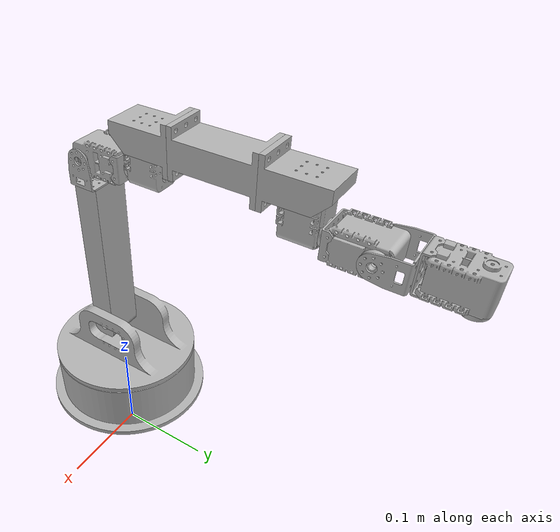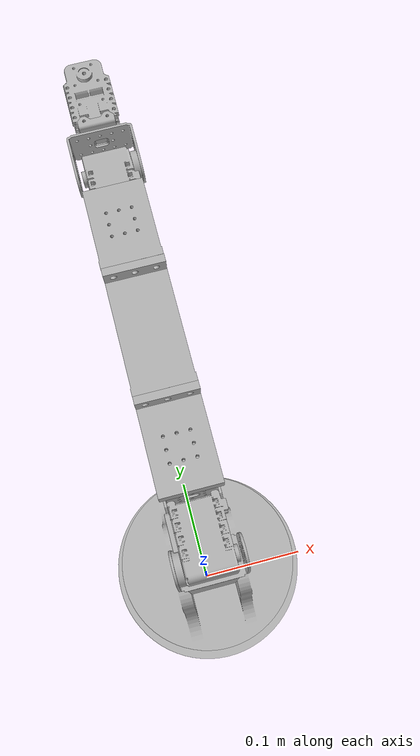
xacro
<?xml version="1.0" ?>
<robot name="mvp_arm_v2_sim" xmlns:xacro="http://www.ros.org/wiki/xacro">

<xacro:include filename="$(find mvp_arm_v2_sim_description)/urdf/materials.xacro" />
<xacro:include filename="$(find mvp_arm_v2_sim_description)/urdf/mvp_arm_v2_sim.trans" />
<xacro:include filename="$(find mvp_arm_v2_sim_description)/urdf/mvp_arm_v2_sim.gazebo" />
<link name="base_link">
  <inertial>
    <origin rpy="0 0 0" xyz="0.003139221237424357 0.007112092878934391 0.09744651147654458"/>
    <mass value="0.2255222028913783"/>
    <inertia ixx="0.000624" ixy="0.0" ixz="0.0" iyy="0.000615" iyz="1e-06" izz="0.001121"/>
  </inertial>
  <visual>
    <origin rpy="0 0 0" xyz="0 0 0"/>
    <geometry>
      <mesh filename="package://mvp_arm_v2_sim_description/meshes/base_link.stl" scale="0.001 0.001 0.001"/>
    </geometry>
    <material name="silver"/>
  </visual>
  <collision>
    <origin rpy="0 0 0" xyz="0 0 0"/>
    <geometry>
      <mesh filename="package://mvp_arm_v2_sim_description/meshes/base_link.stl" scale="0.001 0.001 0.001"/>
    </geometry>
  </collision>
</link>

<link name="Spinny_Thing_On_Servo_1">
  <inertial>
    <origin rpy="0 0 0" xyz="2.010053463885565e-05 -1.259502991068917e-06 -0.002248960573131231"/>
    <mass value="0.012286224598738087"/>
    <inertia ixx="0.0" ixy="-0.0" ixz="-0.0" iyy="0.0" iyz="0.0" izz="1e-06"/>
  </inertial>
  <visual>
    <origin rpy="0 0 0" xyz="-0.003026 -0.329964 -0.337601"/>
    <geometry>
      <mesh filename="package://mvp_arm_v2_sim_description/meshes/Spinny_Thing_On_Servo_1.stl" scale="0.001 0.001 0.001"/>
    </geometry>
    <material name="silver"/>
  </visual>
  <collision>
    <origin rpy="0 0 0" xyz="-0.003026 -0.329964 -0.337601"/>
    <geometry>
      <mesh filename="package://mvp_arm_v2_sim_description/meshes/Spinny_Thing_On_Servo_1.stl" scale="0.001 0.001 0.001"/>
    </geometry>
  </collision>
</link>

<link name="AX-12A_Servo_1">
  <inertial>
    <origin rpy="0 0 0" xyz="-0.006844397716463661 0.019372363950331595 -0.017899908655313768"/>
    <mass value="0.32411536495008075"/>
    <inertia ixx="9.1e-05" ixy="0.0" ixz="0.0" iyy="5e-05" iyz="-1e-06" izz="7.9e-05"/>
  </inertial>
  <visual>
    <origin rpy="0 0 0" xyz="-0.009733 -0.297485 -0.371223"/>
    <geometry>
      <mesh filename="package://mvp_arm_v2_sim_description/meshes/AX-12A_Servo_1.stl" scale="0.001 0.001 0.001"/>
    </geometry>
    <material name="silver"/>
  </visual>
  <collision>
    <origin rpy="0 0 0" xyz="-0.009733 -0.297485 -0.371223"/>
    <geometry>
      <mesh filename="package://mvp_arm_v2_sim_description/meshes/AX-12A_Servo_1.stl" scale="0.001 0.001 0.001"/>
    </geometry>
  </collision>
</link>

<link name="Spinny_Thing_On_Servo_2_1">
  <inertial>
    <origin rpy="0 0 0" xyz="0.002248723852282898 1.0899252977925045e-07 1.9672056998709664e-05"/>
    <mass value="0.012286224598738087"/>
    <inertia ixx="1e-06" ixy="0.0" ixz="0.0" iyy="0.0" iyz="0.0" izz="0.0"/>
  </inertial>
  <visual>
    <origin rpy="0 0 0" xyz="-0.019384 -0.261974 -0.354035"/>
    <geometry>
      <mesh filename="package://mvp_arm_v2_sim_description/meshes/Spinny_Thing_On_Servo_2_1.stl" scale="0.001 0.001 0.001"/>
    </geometry>
    <material name="silver"/>
  </visual>
  <collision>
    <origin rpy="0 0 0" xyz="-0.019384 -0.261974 -0.354035"/>
    <geometry>
      <mesh filename="package://mvp_arm_v2_sim_description/meshes/Spinny_Thing_On_Servo_2_1.stl" scale="0.001 0.001 0.001"/>
    </geometry>
  </collision>
</link>

<link name="AX-12A_Servo_2_1">
  <inertial>
    <origin rpy="0 0 0" xyz="-0.015394349743787807 0.022878705562556806 -0.00814884451855008"/>
    <mass value="0.32411536495008075"/>
    <inertia ixx="7.9e-05" ixy="2e-06" ixz="-0.0" iyy="5e-05" iyz="0.0" izz="9.1e-05"/>
  </inertial>
  <visual>
    <origin rpy="0 0 0" xyz="-0.019064 -0.225979 -0.362054"/>
    <geometry>
      <mesh filename="package://mvp_arm_v2_sim_description/meshes/AX-12A_Servo_2_1.stl" scale="0.001 0.001 0.001"/>
    </geometry>
    <material name="silver"/>
  </visual>
  <collision>
    <origin rpy="0 0 0" xyz="-0.019064 -0.225979 -0.362054"/>
    <geometry>
      <mesh filename="package://mvp_arm_v2_sim_description/meshes/AX-12A_Servo_2_1.stl" scale="0.001 0.001 0.001"/>
    </geometry>
  </collision>
</link>

<link name="AX-12A_Servo_3_1">
  <inertial>
    <origin rpy="0 0 0" xyz="0.008692941406935287 -0.016872496794597514 -0.01929838841732684"/>
    <mass value="0.32411536495008075"/>
    <inertia ixx="9.1e-05" ixy="0.0" ixz="0.0" iyy="7.9e-05" iyz="-2e-06" izz="5e-05"/>
  </inertial>
  <visual>
    <origin rpy="0 0 0" xyz="0.005672 -0.21714 -0.386345"/>
    <geometry>
      <mesh filename="package://mvp_arm_v2_sim_description/meshes/AX-12A_Servo_3_1.stl" scale="0.001 0.001 0.001"/>
    </geometry>
    <material name="silver"/>
  </visual>
  <collision>
    <origin rpy="0 0 0" xyz="0.005672 -0.21714 -0.386345"/>
    <geometry>
      <mesh filename="package://mvp_arm_v2_sim_description/meshes/AX-12A_Servo_3_1.stl" scale="0.001 0.001 0.001"/>
    </geometry>
  </collision>
</link>

<link name="Spinny_Thing_On_Servo_3_1">
  <inertial>
    <origin rpy="0 0 0" xyz="-3.354762194564091e-07 0.0022492825643248837 -1.1344660777456994e-06"/>
    <mass value="0.012286224598738087"/>
    <inertia ixx="0.0" ixy="-0.0" ixz="0.0" iyy="1e-06" iyz="-0.0" izz="0.0"/>
  </inertial>
  <visual>
    <origin rpy="0 0 0" xyz="-0.003135 -0.215974 -0.353921"/>
    <geometry>
      <mesh filename="package://mvp_arm_v2_sim_description/meshes/Spinny_Thing_On_Servo_3_1.stl" scale="0.001 0.001 0.001"/>
    </geometry>
    <material name="silver"/>
  </visual>
  <collision>
    <origin rpy="0 0 0" xyz="-0.003135 -0.215974 -0.353921"/>
    <geometry>
      <mesh filename="package://mvp_arm_v2_sim_description/meshes/Spinny_Thing_On_Servo_3_1.stl" scale="0.001 0.001 0.001"/>
    </geometry>
  </collision>
</link>

<link name="Bottom_Connector__1__1">
  <inertial>
    <origin rpy="0 0 0" xyz="0.007999664523551065 0.0018414055268290708 6.837536046383486e-05"/>
    <mass value="0.0016262220015435807"/>
    <inertia ixx="0.0" ixy="-0.0" ixz="-0.0" iyy="0.0" iyz="-0.0" izz="0.0"/>
  </inertial>
  <visual>
    <origin rpy="0 0 0" xyz="0.004865 -0.220474 -0.353849"/>
    <geometry>
      <mesh filename="package://mvp_arm_v2_sim_description/meshes/Bottom_Connector__1__1.stl" scale="0.001 0.001 0.001"/>
    </geometry>
    <material name="silver"/>
  </visual>
  <collision>
    <origin rpy="0 0 0" xyz="0.004865 -0.220474 -0.353849"/>
    <geometry>
      <mesh filename="package://mvp_arm_v2_sim_description/meshes/Bottom_Connector__1__1.stl" scale="0.001 0.001 0.001"/>
    </geometry>
  </collision>
</link>

<link name="AX-12A_Servo_5_1">
  <inertial>
    <origin rpy="0 0 0" xyz="-2.5065005857449404e-07 0.01572277873113477 0.013106537518999761"/>
    <mass value="0.32411536495008075"/>
    <inertia ixx="9.1e-05" ixy="-0.0" ixz="-0.0" iyy="7.9e-05" iyz="1e-06" izz="5e-05"/>
  </inertial>
  <visual>
    <origin rpy="0 0 0" xyz="-0.002332 -0.039577 -0.354023"/>
    <geometry>
      <mesh filename="package://mvp_arm_v2_sim_description/meshes/AX-12A_Servo_5_1.stl" scale="0.001 0.001 0.001"/>
    </geometry>
    <material name="silver"/>
  </visual>
  <collision>
    <origin rpy="0 0 0" xyz="-0.002332 -0.039577 -0.354023"/>
    <geometry>
      <mesh filename="package://mvp_arm_v2_sim_description/meshes/AX-12A_Servo_5_1.stl" scale="0.001 0.001 0.001"/>
    </geometry>
  </collision>
</link>

<link name="Bottom_Connector__2__1">
  <inertial>
    <origin rpy="0 0 0" xyz="0.008000486205254101 0.016001930051550324 0.003648509599558425"/>
    <mass value="0.0016262220015435807"/>
    <inertia ixx="0.0" ixy="0.0" ixz="-0.0" iyy="0.0" iyz="0.0" izz="0.0"/>
  </inertial>
  <visual>
    <origin rpy="0 0 0" xyz="0.005668 -0.039849 -0.390023"/>
    <geometry>
      <mesh filename="package://mvp_arm_v2_sim_description/meshes/Bottom_Connector__2__1.stl" scale="0.001 0.001 0.001"/>
    </geometry>
    <material name="silver"/>
  </visual>
  <collision>
    <origin rpy="0 0 0" xyz="0.005668 -0.039849 -0.390023"/>
    <geometry>
      <mesh filename="package://mvp_arm_v2_sim_description/meshes/Bottom_Connector__2__1.stl" scale="0.001 0.001 0.001"/>
    </geometry>
  </collision>
</link>

<link name="Spinny_Thing_On_Servo_5_1">
  <inertial>
    <origin rpy="0 0 0" xyz="4.862052316962837e-07 0.002256036378218064 0.007998161392409109"/>
    <mass value="0.012286224598738087"/>
    <inertia ixx="0.0" ixy="-0.0" ixz="-0.0" iyy="1e-06" iyz="-0.0" izz="0.0"/>
  </inertial>
  <visual>
    <origin rpy="0 0 0" xyz="-0.002332 -0.035072 -0.346026"/>
    <geometry>
      <mesh filename="package://mvp_arm_v2_sim_description/meshes/Spinny_Thing_On_Servo_5_1.stl" scale="0.001 0.001 0.001"/>
    </geometry>
    <material name="silver"/>
  </visual>
  <collision>
    <origin rpy="0 0 0" xyz="-0.002332 -0.035072 -0.346026"/>
    <geometry>
      <mesh filename="package://mvp_arm_v2_sim_description/meshes/Spinny_Thing_On_Servo_5_1.stl" scale="0.001 0.001 0.001"/>
    </geometry>
  </collision>
</link>

<link name="AX-12A_Servo_4_1">
  <inertial>
    <origin rpy="0 0 0" xyz="0.015714221557267063 0.013116615324266908 -8.933544773326307e-06"/>
    <mass value="0.32411536495008075"/>
    <inertia ixx="7.9e-05" ixy="2e-06" ixz="-0.0" iyy="5e-05" iyz="0.0" izz="9.1e-05"/>
  </inertial>
  <visual>
    <origin rpy="0 0 0" xyz="0.01386 0.006423 -0.354051"/>
    <geometry>
      <mesh filename="package://mvp_arm_v2_sim_description/meshes/AX-12A_Servo_4_1.stl" scale="0.001 0.001 0.001"/>
    </geometry>
    <material name="silver"/>
  </visual>
  <collision>
    <origin rpy="0 0 0" xyz="0.01386 0.006423 -0.354051"/>
    <geometry>
      <mesh filename="package://mvp_arm_v2_sim_description/meshes/AX-12A_Servo_4_1.stl" scale="0.001 0.001 0.001"/>
    </geometry>
  </collision>
</link>

<link name="Bottom_Connector_Bracket_4_1">
  <inertial>
    <origin rpy="0 0 0" xyz="-0.01599951379473832 0.003663913415711831 0.00799765156585941"/>
    <mass value="0.0016262220015435807"/>
    <inertia ixx="0.0" ixy="-0.0" ixz="-0.0" iyy="0.0" iyz="-0.0" izz="0.0"/>
  </inertial>
  <visual>
    <origin rpy="0 0 0" xyz="-0.018332 -0.029572 -0.346029"/>
    <geometry>
      <mesh filename="package://mvp_arm_v2_sim_description/meshes/Bottom_Connector_Bracket_4_1.stl" scale="0.001 0.001 0.001"/>
    </geometry>
    <material name="silver"/>
  </visual>
  <collision>
    <origin rpy="0 0 0" xyz="-0.018332 -0.029572 -0.346029"/>
    <geometry>
      <mesh filename="package://mvp_arm_v2_sim_description/meshes/Bottom_Connector_Bracket_4_1.stl" scale="0.001 0.001 0.001"/>
    </geometry>
  </collision>
</link>

<link name="Wrist_Connector__1__1">
  <inertial>
    <origin rpy="0 0 0" xyz="-1.4193676218165249e-05 0.020451062703479406 0.001669458393851686"/>
    <mass value="0.24638999063533176"/>
    <inertia ixx="9.9e-05" ixy="0.0" ixz="-0.0" iyy="6e-05" iyz="-8e-06" izz="0.000118"/>
  </inertial>
  <visual>
    <origin rpy="0 0 0" xyz="-0.002332 -0.167846 -0.385945"/>
    <geometry>
      <mesh filename="package://mvp_arm_v2_sim_description/meshes/Wrist_Connector__1__1.stl" scale="0.001 0.001 0.001"/>
    </geometry>
    <material name="silver"/>
  </visual>
  <collision>
    <origin rpy="0 0 0" xyz="-0.002332 -0.167846 -0.385945"/>
    <geometry>
      <mesh filename="package://mvp_arm_v2_sim_description/meshes/Wrist_Connector__1__1.stl" scale="0.001 0.001 0.001"/>
    </geometry>
  </collision>
</link>

<link name="Arm_Segment_80mm__1__1">
  <inertial>
    <origin rpy="0 0 0" xyz="4.861124078213951e-07 0.040000256660945824 -2.3913742601855414e-05"/>
    <mass value="0.6503411791785553"/>
    <inertia ixx="0.000442" ixy="-0.0" ixz="-0.0" iyy="0.000126" iyz="0.0" izz="0.000472"/>
  </inertial>
  <visual>
    <origin rpy="0 0 0" xyz="-0.002332 -0.087846 -0.385993"/>
    <geometry>
      <mesh filename="package://mvp_arm_v2_sim_description/meshes/Arm_Segment_80mm__1__1.stl" scale="0.001 0.001 0.001"/>
    </geometry>
    <material name="silver"/>
  </visual>
  <collision>
    <origin rpy="0 0 0" xyz="-0.002332 -0.087846 -0.385993"/>
    <geometry>
      <mesh filename="package://mvp_arm_v2_sim_description/meshes/Arm_Segment_80mm__1__1.stl" scale="0.001 0.001 0.001"/>
    </geometry>
  </collision>
</link>

<link name="Bottom_Connector_Bracket_3_1">
  <inertial>
    <origin rpy="0 0 0" xyz="0.008015653129645035 -0.008001096220477677 -0.0017664080467950094"/>
    <mass value="0.0016262220015435807"/>
    <inertia ixx="0.0" ixy="-0.0" ixz="-0.0" iyy="0.0" iyz="0.0" izz="0.0"/>
  </inertial>
  <visual>
    <origin rpy="0 0 0" xyz="0.00575 -0.207852 -0.39535"/>
    <geometry>
      <mesh filename="package://mvp_arm_v2_sim_description/meshes/Bottom_Connector_Bracket_3_1.stl" scale="0.001 0.001 0.001"/>
    </geometry>
    <material name="silver"/>
  </visual>
  <collision>
    <origin rpy="0 0 0" xyz="0.00575 -0.207852 -0.39535"/>
    <geometry>
      <mesh filename="package://mvp_arm_v2_sim_description/meshes/Bottom_Connector_Bracket_3_1.stl" scale="0.001 0.001 0.001"/>
    </geometry>
  </collision>
</link>

<link name="Elbow_Connector__1__1">
  <inertial>
    <origin rpy="0 0 0" xyz="4.854072580360441e-07 0.01954555339504626 -0.007829917675297227"/>
    <mass value="0.24639014270019174"/>
    <inertia ixx="9.9e-05" ixy="0.0" ixz="-0.0" iyy="6e-05" iyz="8e-06" izz="0.000118"/>
  </inertial>
  <visual>
    <origin rpy="0 0 0" xyz="-0.002332 -0.047852 -0.395518"/>
    <geometry>
      <mesh filename="package://mvp_arm_v2_sim_description/meshes/Elbow_Connector__1__1.stl" scale="0.001 0.001 0.001"/>
    </geometry>
    <material name="silver"/>
  </visual>
  <collision>
    <origin rpy="0 0 0" xyz="-0.002332 -0.047852 -0.395518"/>
    <geometry>
      <mesh filename="package://mvp_arm_v2_sim_description/meshes/Elbow_Connector__1__1.stl" scale="0.001 0.001 0.001"/>
    </geometry>
  </collision>
</link>

<link name="Spinny_Thing_On_Servo_4_1">
  <inertial>
    <origin rpy="0 0 0" xyz="0.002250457525271629 0.00800030818575853 -5.215042616468768e-06"/>
    <mass value="0.012286224598738087"/>
    <inertia ixx="1e-06" ixy="0.0" ixz="0.0" iyy="0.0" iyz="-0.0" izz="0.0"/>
  </inertial>
  <visual>
    <origin rpy="0 0 0" xyz="0.01836 0.014423 -0.354056"/>
    <geometry>
      <mesh filename="package://mvp_arm_v2_sim_description/meshes/Spinny_Thing_On_Servo_4_1.stl" scale="0.001 0.001 0.001"/>
    </geometry>
    <material name="silver"/>
  </visual>
  <collision>
    <origin rpy="0 0 0" xyz="0.01836 0.014423 -0.354056"/>
    <geometry>
      <mesh filename="package://mvp_arm_v2_sim_description/meshes/Spinny_Thing_On_Servo_4_1.stl" scale="0.001 0.001 0.001"/>
    </geometry>
  </collision>
</link>

<link name="f2Bracket__1__2">
  <inertial>
    <origin rpy="0 0 0" xyz="2.2123218426130242e-07 -0.01349497011844943 0.010253562328138288"/>
    <mass value="0.0037556666472927302"/>
    <inertia ixx="1e-06" ixy="-0.0" ixz="0.0" iyy="2e-06" iyz="-0.0" izz="1e-06"/>
  </inertial>
  <visual>
    <origin rpy="0 0 0" xyz="-0.002639 -0.007061 -0.327543"/>
    <geometry>
      <mesh filename="package://mvp_arm_v2_sim_description/meshes/f2Bracket__1__2.stl" scale="0.001 0.001 0.001"/>
    </geometry>
    <material name="silver"/>
  </visual>
  <collision>
    <origin rpy="0 0 0" xyz="-0.002639 -0.007061 -0.327543"/>
    <geometry>
      <mesh filename="package://mvp_arm_v2_sim_description/meshes/f2Bracket__1__2.stl" scale="0.001 0.001 0.001"/>
    </geometry>
  </collision>
</link>

<link name="Arm_segment_2_1">
  <inertial>
    <origin rpy="0 0 0" xyz="0.019000221232186202 4.675663709389783e-05 0.07720582991353392"/>
    <mass value="0.21463602179697447"/>
    <inertia ixx="0.000568" ixy="-0.0" ixz="0.0" iyy="0.000582" iyz="-0.0" izz="3.7e-05"/>
  </inertial>
  <visual>
    <origin rpy="0 0 0" xyz="0.016361 0.005539 -0.16255"/>
    <geometry>
      <mesh filename="package://mvp_arm_v2_sim_description/meshes/Arm_segment_2_1.stl" scale="0.001 0.001 0.001"/>
    </geometry>
    <material name="silver"/>
  </visual>
  <collision>
    <origin rpy="0 0 0" xyz="0.016361 0.005539 -0.16255"/>
    <geometry>
      <mesh filename="package://mvp_arm_v2_sim_description/meshes/Arm_segment_2_1.stl" scale="0.001 0.001 0.001"/>
    </geometry>
  </collision>
</link>

<link name="Rotating_Base__1___1__1">
  <inertial>
    <origin rpy="0 0 0" xyz="-0.0016851816583102388 7.331635761464658e-05 0.01301663136886358"/>
    <mass value="0.1980303324276481"/>
    <inertia ixx="0.000259" ixy="0.0" ixz="6e-06" iyy="0.000259" iyz="-0.0" izz="0.00042"/>
  </inertial>
  <visual>
    <origin rpy="0 0 0" xyz="-0.003139 -0.006444 -0.130999"/>
    <geometry>
      <mesh filename="package://mvp_arm_v2_sim_description/meshes/Rotating_Base__1___1__1.stl" scale="0.001 0.001 0.001"/>
    </geometry>
    <material name="silver"/>
  </visual>
  <collision>
    <origin rpy="0 0 0" xyz="-0.003139 -0.006444 -0.130999"/>
    <geometry>
      <mesh filename="package://mvp_arm_v2_sim_description/meshes/Rotating_Base__1___1__1.stl" scale="0.001 0.001 0.001"/>
    </geometry>
  </collision>
</link>

<link name="f2Bracket__1___1__1">
  <inertial>
    <origin rpy="0 0 0" xyz="-0.020998313854940994 0.008254232058487798 -0.00018921791860893045"/>
    <mass value="0.0037556666472927302"/>
    <inertia ixx="1e-06" ixy="-0.0" ixz="-0.0" iyy="1e-06" iyz="0.0" izz="2e-06"/>
  </inertial>
  <visual>
    <origin rpy="0 0 0" xyz="-0.023883 -0.269974 -0.354069"/>
    <geometry>
      <mesh filename="package://mvp_arm_v2_sim_description/meshes/f2Bracket__1___1__1.stl" scale="0.001 0.001 0.001"/>
    </geometry>
    <material name="silver"/>
  </visual>
  <collision>
    <origin rpy="0 0 0" xyz="-0.023883 -0.269974 -0.354069"/>
    <geometry>
      <mesh filename="package://mvp_arm_v2_sim_description/meshes/f2Bracket__1___1__1.stl" scale="0.001 0.001 0.001"/>
    </geometry>
  </collision>
</link>

<link name="Bottom_Connector_1">
  <inertial>
    <origin rpy="0 0 0" xyz="-0.007930323167322334 0.0018363914140208104 -0.008070506274529043"/>
    <mass value="0.0016262220015435807"/>
    <inertia ixx="0.0" ixy="0.0" ixz="0.0" iyy="0.0" iyz="-0.0" izz="0.0"/>
  </inertial>
  <visual>
    <origin rpy="0 0 0" xyz="-0.010815 -0.288479 -0.361944"/>
    <geometry>
      <mesh filename="package://mvp_arm_v2_sim_description/meshes/Bottom_Connector_1.stl" scale="0.001 0.001 0.001"/>
    </geometry>
    <material name="silver"/>
  </visual>
  <collision>
    <origin rpy="0 0 0" xyz="-0.010815 -0.288479 -0.361944"/>
    <geometry>
      <mesh filename="package://mvp_arm_v2_sim_description/meshes/Bottom_Connector_1.stl" scale="0.001 0.001 0.001"/>
    </geometry>
  </collision>
</link>

<joint name="Rev7" type="continuous">
  <origin rpy="0 0 0" xyz="-0.006707 0.032479 -0.033622"/>
  <parent link="AX-12A_Servo_1"/>
  <child link="Spinny_Thing_On_Servo_1"/>
  <axis xyz="0.008727 -0.000609 -0.999962"/>
</joint>

<joint name="Rigid3" type="fixed">
  <origin rpy="0 0 0" xyz="-0.001082 0.009006 0.009279"/>
  <parent link="Bottom_Connector_1"/>
  <child link="AX-12A_Servo_1"/>
</joint>

<joint name="Rev6" type="continuous">
  <origin rpy="0 0 0" xyz="0.00032 0.035995 -0.008019"/>
  <parent link="AX-12A_Servo_2_1"/>
  <child link="Spinny_Thing_On_Servo_2_1"/>
  <axis xyz="-0.999962 -5e-06 -0.008727"/>
</joint>

<joint name="Rigid4" type="fixed">
  <origin rpy="0 0 0" xyz="0.023929 0.005505 0.008205"/>
  <parent link="Bottom_Connector__1__1"/>
  <child link="AX-12A_Servo_2_1"/>
</joint>

<joint name="Rigid5" type="fixed">
  <origin rpy="0 0 0" xyz="7.8e-05 0.009288 -0.009005"/>
  <parent link="Bottom_Connector_Bracket_3_1"/>
  <child link="AX-12A_Servo_3_1"/>
</joint>

<joint name="Rev5" type="continuous">
  <origin rpy="0 0 0" xyz="0.008807 -0.001166 -0.032424"/>
  <parent link="AX-12A_Servo_3_1"/>
  <child link="Spinny_Thing_On_Servo_3_1"/>
  <axis xyz="-0.0 1.0 -0.000609"/>
</joint>

<joint name="Rigid6" type="fixed">
  <origin rpy="0 0 0" xyz="-0.008 0.0045 -7.2e-05"/>
  <parent link="Spinny_Thing_On_Servo_3_1"/>
  <child link="Bottom_Connector__1__1"/>
</joint>

<joint name="Rev4" type="continuous">
  <origin rpy="0 0 0" xyz="0.0 0.004505 0.007997"/>
  <parent link="Spinny_Thing_On_Servo_5_1"/>
  <child link="AX-12A_Servo_5_1"/>
  <axis xyz="-0.0 1.0 -0.000609"/>
</joint>

<joint name="Rigid7" type="fixed">
  <origin rpy="0 0 0" xyz="-0.008 0.000272 0.036"/>
  <parent link="AX-12A_Servo_5_1"/>
  <child link="Bottom_Connector__2__1"/>
</joint>

<joint name="Rigid8" type="fixed">
  <origin rpy="0 0 0" xyz="-0.016 0.0055 -3e-06"/>
  <parent link="Bottom_Connector_Bracket_4_1"/>
  <child link="Spinny_Thing_On_Servo_5_1"/>
</joint>

<joint name="Rev3" type="continuous">
  <origin rpy="0 0 0" xyz="0.0045 0.008 -5e-06"/>
  <parent link="Spinny_Thing_On_Servo_4_1"/>
  <child link="AX-12A_Servo_4_1"/>
  <axis xyz="1.0 0.0 0.0"/>
</joint>

<joint name="Rigid9" type="fixed">
  <origin rpy="0 0 0" xyz="0.032192 0.035995 -0.008022"/>
  <parent link="AX-12A_Servo_4_1"/>
  <child link="Bottom_Connector_Bracket_4_1"/>
</joint>

<joint name="Rigid10" type="fixed">
  <origin rpy="0 0 0" xyz="0.0 0.08 -4.8e-05"/>
  <parent link="Arm_Segment_80mm__1__1"/>
  <child link="Wrist_Connector__1__1"/>
</joint>

<joint name="Rigid11" type="fixed">
  <origin rpy="0 0 0" xyz="0.0 0.039994 -0.009525"/>
  <parent link="Elbow_Connector__1__1"/>
  <child link="Arm_Segment_80mm__1__1"/>
</joint>

<joint name="Rigid12" type="fixed">
  <origin rpy="0 0 0" xyz="-0.008082 0.040006 0.009405"/>
  <parent link="Wrist_Connector__1__1"/>
  <child link="Bottom_Connector_Bracket_3_1"/>
</joint>

<joint name="Rigid13" type="fixed">
  <origin rpy="0 0 0" xyz="0.008 0.008003 0.005495"/>
  <parent link="Bottom_Connector__2__1"/>
  <child link="Elbow_Connector__1__1"/>
</joint>

<joint name="Rigid14" type="fixed">
  <origin rpy="0 0 0" xyz="-0.020999 -0.021484 0.026513"/>
  <parent link="f2Bracket__1__2"/>
  <child link="Spinny_Thing_On_Servo_4_1"/>
</joint>

<joint name="Rigid15" type="fixed">
  <origin rpy="0 0 0" xyz="0.019 0.0126 0.164993"/>
  <parent link="Arm_segment_2_1"/>
  <child link="f2Bracket__1__2"/>
</joint>

<joint name="Rev2" type="continuous">
  <origin rpy="0 0 0" xyz="-0.0195 -0.011983 0.031551"/>
  <parent link="Rotating_Base__1___1__1"/>
  <child link="Arm_segment_2_1"/>
  <axis xyz="-1.0 0.0 -0.0"/>
</joint>

<joint name="Rev1" type="continuous">
  <origin rpy="0 0 0" xyz="0.003139 0.006444 0.130999"/>
  <parent link="base_link"/>
  <child link="Rotating_Base__1___1__1"/>
  <axis xyz="0.0 -0.0 -1.0"/>
</joint>

<joint name="Rigid16" type="fixed">
  <origin rpy="0 0 0" xyz="0.004499 0.008 3.4e-05"/>
  <parent link="Spinny_Thing_On_Servo_2_1"/>
  <child link="f2Bracket__1___1__1"/>
</joint>

<joint name="Rigid17" type="fixed">
  <origin rpy="0 0 0" xyz="-0.013068 0.018505 0.007875"/>
  <parent link="f2Bracket__1___1__1"/>
  <child link="Bottom_Connector_1"/>
</joint>

</robot>

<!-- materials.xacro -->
<robot name="mvp_arm_v2_sim" xmlns:xacro="http://www.ros.org/wiki/xacro" >

<material name="silver">
  <color rgba="0.700 0.700 0.700 1.000"/>
</material>

</robot>

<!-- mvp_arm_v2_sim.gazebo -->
<robot name="mvp_arm_v2_sim" xmlns:xacro="http://www.ros.org/wiki/xacro" >

<xacro:property name="body_color" value="Gazebo/Silver" />

<gazebo>
  <plugin filename="libgazebo_ros_control.so" name="control"/>
</gazebo>
<gazebo reference="base_link">
  <material>${body_color}</material>
  <mu1>0.2</mu1>
  <mu2>0.2</mu2>
  <selfCollide>true</selfCollide>
  <gravity>true</gravity>
</gazebo>

<gazebo reference="Spinny_Thing_On_Servo_1">
  <material>${body_color}</material>
  <mu1>0.2</mu1>
  <mu2>0.2</mu2>
  <selfCollide>true</selfCollide>
</gazebo>

<gazebo reference="AX-12A_Servo_1">
  <material>${body_color}</material>
  <mu1>0.2</mu1>
  <mu2>0.2</mu2>
  <selfCollide>true</selfCollide>
</gazebo>

<gazebo reference="Spinny_Thing_On_Servo_2_1">
  <material>${body_color}</material>
  <mu1>0.2</mu1>
  <mu2>0.2</mu2>
  <selfCollide>true</selfCollide>
</gazebo>

<gazebo reference="AX-12A_Servo_2_1">
  <material>${body_color}</material>
  <mu1>0.2</mu1>
  <mu2>0.2</mu2>
  <selfCollide>true</selfCollide>
</gazebo>

<gazebo reference="AX-12A_Servo_3_1">
  <material>${body_color}</material>
  <mu1>0.2</mu1>
  <mu2>0.2</mu2>
  <selfCollide>true</selfCollide>
</gazebo>

<gazebo reference="Spinny_Thing_On_Servo_3_1">
  <material>${body_color}</material>
  <mu1>0.2</mu1>
  <mu2>0.2</mu2>
  <selfCollide>true</selfCollide>
</gazebo>

<gazebo reference="Bottom_Connector__1__1">
  <material>${body_color}</material>
  <mu1>0.2</mu1>
  <mu2>0.2</mu2>
  <selfCollide>true</selfCollide>
</gazebo>

<gazebo reference="AX-12A_Servo_5_1">
  <material>${body_color}</material>
  <mu1>0.2</mu1>
  <mu2>0.2</mu2>
  <selfCollide>true</selfCollide>
</gazebo>

<gazebo reference="Bottom_Connector__2__1">
  <material>${body_color}</material>
  <mu1>0.2</mu1>
  <mu2>0.2</mu2>
  <selfCollide>true</selfCollide>
</gazebo>

<gazebo reference="Spinny_Thing_On_Servo_5_1">
  <material>${body_color}</material>
  <mu1>0.2</mu1>
  <mu2>0.2</mu2>
  <selfCollide>true</selfCollide>
</gazebo>

<gazebo reference="AX-12A_Servo_4_1">
  <material>${body_color}</material>
  <mu1>0.2</mu1>
  <mu2>0.2</mu2>
  <selfCollide>true</selfCollide>
</gazebo>

<gazebo reference="Bottom_Connector_Bracket_4_1">
  <material>${body_color}</material>
  <mu1>0.2</mu1>
  <mu2>0.2</mu2>
  <selfCollide>true</selfCollide>
</gazebo>

<gazebo reference="Wrist_Connector__1__1">
  <material>${body_color}</material>
  <mu1>0.2</mu1>
  <mu2>0.2</mu2>
  <selfCollide>true</selfCollide>
</gazebo>

<gazebo reference="Arm_Segment_80mm__1__1">
  <material>${body_color}</material>
  <mu1>0.2</mu1>
  <mu2>0.2</mu2>
  <selfCollide>true</selfCollide>
</gazebo>

<gazebo reference="Bottom_Connector_Bracket_3_1">
  <material>${body_color}</material>
  <mu1>0.2</mu1>
  <mu2>0.2</mu2>
  <selfCollide>true</selfCollide>
</gazebo>

<gazebo reference="Elbow_Connector__1__1">
  <material>${body_color}</material>
  <mu1>0.2</mu1>
  <mu2>0.2</mu2>
  <selfCollide>true</selfCollide>
</gazebo>

<gazebo reference="Spinny_Thing_On_Servo_4_1">
  <material>${body_color}</material>
  <mu1>0.2</mu1>
  <mu2>0.2</mu2>
  <selfCollide>true</selfCollide>
</gazebo>

<gazebo reference="f2Bracket__1__2">
  <material>${body_color}</material>
  <mu1>0.2</mu1>
  <mu2>0.2</mu2>
  <selfCollide>true</selfCollide>
</gazebo>

<gazebo reference="Arm_segment_2_1">
  <material>${body_color}</material>
  <mu1>0.2</mu1>
  <mu2>0.2</mu2>
  <selfCollide>true</selfCollide>
</gazebo>

<gazebo reference="Rotating_Base__1___1__1">
  <material>${body_color}</material>
  <mu1>0.2</mu1>
  <mu2>0.2</mu2>
  <selfCollide>true</selfCollide>
</gazebo>

<gazebo reference="f2Bracket__1___1__1">
  <material>${body_color}</material>
  <mu1>0.2</mu1>
  <mu2>0.2</mu2>
  <selfCollide>true</selfCollide>
</gazebo>

<gazebo reference="Bottom_Connector_1">
  <material>${body_color}</material>
  <mu1>0.2</mu1>
  <mu2>0.2</mu2>
  <selfCollide>true</selfCollide>
</gazebo>

</robot>
